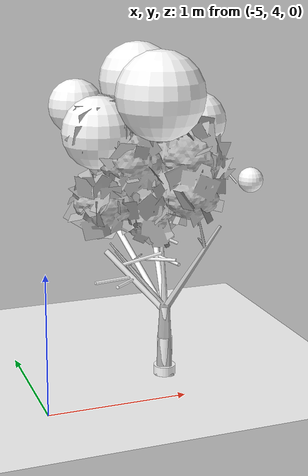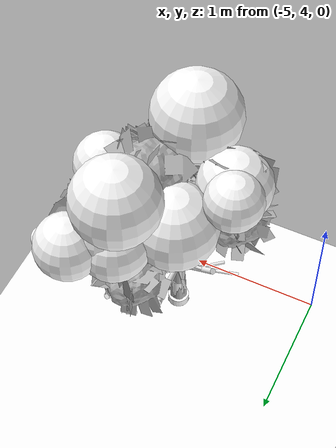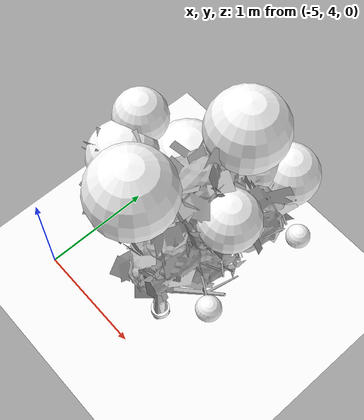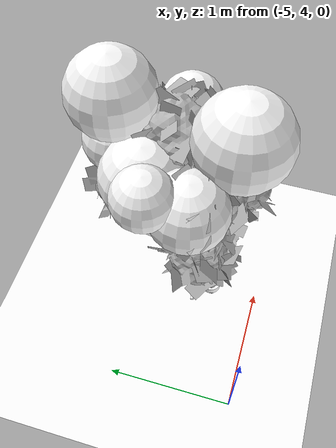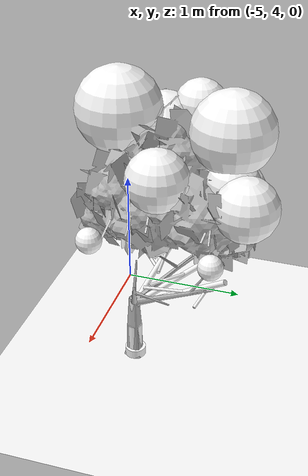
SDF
<sdf version="1.11">
 <world name="peach_orchard">
  <model name="ground">
   <static>true</static>
   <link name="link">
    <visual name="soil">
     <geometry><plane><normal>0 0 1</normal><size>32 22</size></plane></geometry>
     <material>
      <ambient>1 1 1 1</ambient>
      <diffuse>1 1 1 1</diffuse>
      <specular>0.1 0.1 0.1 1</specular>
      <pbr>
       <metal>
        <albedo_map>textures/soil_albedo.png</albedo_map>
        <normal_map type="tangent">textures/soil_normal.png</normal_map>
        <roughness>0.95</roughness>
        <metalness>0</metalness>
       </metal>
      </pbr>
     </material>
    </visual>
    <collision name="c_soil">
     <geometry><plane><normal>0 0 1</normal><size>32 22</size></plane></geometry>
    </collision>
   </link>
  </model>
  <model name="tree_r1_t5">
   <pose>-4 4.4 0 0 0 0</pose>
   <static>true</static>
   <link name="link">
    <visual name="tree_mesh">
     <pose>0 0 0 0 0 -0.325923</pose>
     <geometry>
      <mesh><uri>model://peach_sim/meshes/peach_tree_b.glb</uri><scale>0.947144 0.947144 0.947144</scale></mesh>
     </geometry>
    </visual>
    <visual name="trunk_0">
     <pose>0 0 0.145671 0 0 0</pose>
     <geometry><cylinder><radius>0.055955</radius><length>0.291343</length></cylinder></geometry>
     <material>
      <ambient>1 1 1 1</ambient>
      <diffuse>1 1 1 1</diffuse>
      <specular>0.1 0.1 0.1 1</specular>
      <pbr>
       <metal>
        <albedo_map>textures/bark_albedo.png</albedo_map>
        <normal_map type="tangent">textures/bark_normal.png</normal_map>
        <roughness>0.9</roughness>
        <metalness>0</metalness>
       </metal>
      </pbr>
     </material>
    </visual>
    <collision name="c_trunk_0">
     <pose>0 0 0.145671 0 0 0</pose>
     <geometry><cylinder><radius>0.055955</radius><length>0.291343</length></cylinder></geometry>
    </collision>
    <visual name="trunk_1">
     <pose>0 0 0.410528 0 0 0</pose>
     <geometry><cylinder><radius>0.0402876</radius><length>0.238371</length></cylinder></geometry>
     <material>
      <ambient>1 1 1 1</ambient>
      <diffuse>1 1 1 1</diffuse>
      <specular>0.1 0.1 0.1 1</specular>
      <pbr>
       <metal>
        <albedo_map>textures/bark_albedo.png</albedo_map>
        <normal_map type="tangent">textures/bark_normal.png</normal_map>
        <roughness>0.9</roughness>
        <metalness>0</metalness>
       </metal>
      </pbr>
     </material>
    </visual>
    <collision name="c_trunk_1">
     <pose>0 0 0.410528 0 0 0</pose>
     <geometry><cylinder><radius>0.0402876</radius><length>0.238371</length></cylinder></geometry>
    </collision>
    <visual name="root_flare">
     <pose>0 0 0.035 0 0 0</pose>
     <geometry><cylinder><radius>0.0811347</radius><length>0.07</length></cylinder></geometry>
     <material>
      <ambient>1 1 1 1</ambient>
      <diffuse>1 1 1 1</diffuse>
      <specular>0.1 0.1 0.1 1</specular>
      <pbr>
       <metal>
        <albedo_map>textures/bark_albedo.png</albedo_map>
        <normal_map type="tangent">textures/bark_normal.png</normal_map>
        <roughness>0.95</roughness>
        <metalness>0</metalness>
       </metal>
      </pbr>
     </material>
    </visual>
    <visual name="scaffold_0">
     <pose>-0.0872035 0.344251 0.759232 0 0.917364 1.81889</pose>
     <geometry><cylinder><radius>0.022</radius><length>0.894518</length></cylinder></geometry>
     <material>
      <ambient>1 1 1 1</ambient>
      <diffuse>1 1 1 1</diffuse>
      <specular>0.1 0.1 0.1 1</specular>
      <pbr>
       <metal>
        <albedo_map>textures/bark_albedo.png</albedo_map>
        <normal_map type="tangent">textures/bark_normal.png</normal_map>
        <roughness>0.9</roughness>
        <metalness>0</metalness>
       </metal>
      </pbr>
     </material>
    </visual>
    <collision name="c_scaffold_0">
     <pose>-0.0872035 0.344251 0.759232 0 0.917364 1.81889</pose>
     <geometry><cylinder><radius>0.022</radius><length>0.894518</length></cylinder></geometry>
    </collision>
    <visual name="branchlet_0_0">
     <pose>-0.117615 0.626333 1.03155 0 0.589614 1.14702</pose>
     <geometry><cylinder><radius>0.012</radius><length>0.229909</length></cylinder></geometry>
     <material>
      <ambient>1 1 1 1</ambient>
      <diffuse>1 1 1 1</diffuse>
      <specular>0.1 0.1 0.1 1</specular>
      <pbr>
       <metal>
        <albedo_map>textures/bark_albedo.png</albedo_map>
        <normal_map type="tangent">textures/bark_normal.png</normal_map>
        <roughness>0.9</roughness>
        <metalness>0</metalness>
       </metal>
      </pbr>
     </material>
    </visual>
    <visual name="branchlet_0_1">
     <pose>0.0294512 0.284055 0.802351 0 1.51422 -0.679646</pose>
     <geometry><cylinder><radius>0.012</radius><length>0.328391</length></cylinder></geometry>
     <material>
      <ambient>1 1 1 1</ambient>
      <diffuse>1 1 1 1</diffuse>
      <specular>0.1 0.1 0.1 1</specular>
      <pbr>
       <metal>
        <albedo_map>textures/bark_albedo.png</albedo_map>
        <normal_map type="tangent">textures/bark_normal.png</normal_map>
        <roughness>0.9</roughness>
        <metalness>0</metalness>
       </metal>
      </pbr>
     </material>
    </visual>
    <visual name="scaffold_1">
     <pose>0.0938184 0.382501 0.735508 0 1.00851 1.33027</pose>
     <geometry><cylinder><radius>0.022</radius><length>0.931016</length></cylinder></geometry>
     <material>
      <ambient>1 1 1 1</ambient>
      <diffuse>1 1 1 1</diffuse>
      <specular>0.1 0.1 0.1 1</specular>
      <pbr>
       <metal>
        <albedo_map>textures/bark_albedo.png</albedo_map>
        <normal_map type="tangent">textures/bark_normal.png</normal_map>
        <roughness>0.9</roughness>
        <metalness>0</metalness>
       </metal>
      </pbr>
     </material>
    </visual>
    <collision name="c_scaffold_1">
     <pose>0.0938184 0.382501 0.735508 0 1.00851 1.33027</pose>
     <geometry><cylinder><radius>0.022</radius><length>0.931016</length></cylinder></geometry>
    </collision>
    <visual name="branchlet_1_0">
     <pose>0.243876 0.606579 0.860283 0 1.98562 -0.343325</pose>
     <geometry><cylinder><radius>0.012</radius><length>0.202907</length></cylinder></geometry>
     <material>
      <ambient>1 1 1 1</ambient>
      <diffuse>1 1 1 1</diffuse>
      <specular>0.1 0.1 0.1 1</specular>
      <pbr>
       <metal>
        <albedo_map>textures/bark_albedo.png</albedo_map>
        <normal_map type="tangent">textures/bark_normal.png</normal_map>
        <roughness>0.9</roughness>
        <metalness>0</metalness>
       </metal>
      </pbr>
     </material>
    </visual>
    <visual name="branchlet_1_1">
     <pose>0.137007 0.291734 0.78293 0 1.53204 -1.39424</pose>
     <geometry><cylinder><radius>0.012</radius><length>0.314072</length></cylinder></geometry>
     <material>
      <ambient>1 1 1 1</ambient>
      <diffuse>1 1 1 1</diffuse>
      <specular>0.1 0.1 0.1 1</specular>
      <pbr>
       <metal>
        <albedo_map>textures/bark_albedo.png</albedo_map>
        <normal_map type="tangent">textures/bark_normal.png</normal_map>
        <roughness>0.9</roughness>
        <metalness>0</metalness>
       </metal>
      </pbr>
     </material>
    </visual>
    <visual name="scaffold_2">
     <pose>-0.18991 0.112189 0.706582 0 0.788415 2.608</pose>
     <geometry><cylinder><radius>0.022</radius><length>0.622</length></cylinder></geometry>
     <material>
      <ambient>1 1 1 1</ambient>
      <diffuse>1 1 1 1</diffuse>
      <specular>0.1 0.1 0.1 1</specular>
      <pbr>
       <metal>
        <albedo_map>textures/bark_albedo.png</albedo_map>
        <normal_map type="tangent">textures/bark_normal.png</normal_map>
        <roughness>0.9</roughness>
        <metalness>0</metalness>
       </metal>
      </pbr>
     </material>
    </visual>
    <collision name="c_scaffold_2">
     <pose>-0.18991 0.112189 0.706582 0 0.788415 2.608</pose>
     <geometry><cylinder><radius>0.022</radius><length>0.622</length></cylinder></geometry>
    </collision>
    <visual name="branchlet_2_0">
     <pose>-0.366314 0.0913442 0.741849 0 1.54168 -2.90192</pose>
     <geometry><cylinder><radius>0.012</radius><length>0.308435</length></cylinder></geometry>
     <material>
      <ambient>1 1 1 1</ambient>
      <diffuse>1 1 1 1</diffuse>
      <specular>0.1 0.1 0.1 1</specular>
      <pbr>
       <metal>
        <albedo_map>textures/bark_albedo.png</albedo_map>
        <normal_map type="tangent">textures/bark_normal.png</normal_map>
        <roughness>0.9</roughness>
        <metalness>0</metalness>
       </metal>
      </pbr>
     </material>
    </visual>
    <visual name="branchlet_2_1">
     <pose>-0.287262 0.0525354 0.721178 0 1.57132 -2.47102</pose>
     <geometry><cylinder><radius>0.012</radius><length>0.216117</length></cylinder></geometry>
     <material>
      <ambient>1 1 1 1</ambient>
      <diffuse>1 1 1 1</diffuse>
      <specular>0.1 0.1 0.1 1</specular>
      <pbr>
       <metal>
        <albedo_map>textures/bark_albedo.png</albedo_map>
        <normal_map type="tangent">textures/bark_normal.png</normal_map>
        <roughness>0.9</roughness>
        <metalness>0</metalness>
       </metal>
      </pbr>
     </material>
    </visual>
    <visual name="branchlet_2_2">
     <pose>-0.118021 0.193758 0.843201 0 1.43873 0.136178</pose>
     <geometry><cylinder><radius>0.012</radius><length>0.347076</length></cylinder></geometry>
     <material>
      <ambient>1 1 1 1</ambient>
      <diffuse>1 1 1 1</diffuse>
      <specular>0.1 0.1 0.1 1</specular>
      <pbr>
       <metal>
        <albedo_map>textures/bark_albedo.png</albedo_map>
        <normal_map type="tangent">textures/bark_normal.png</normal_map>
        <roughness>0.9</roughness>
        <metalness>0</metalness>
       </metal>
      </pbr>
     </material>
    </visual>
    <visual name="canopy_0">
     <pose>-0.209099 0.484087 1.69039 0 0 0</pose>
     <geometry><sphere><radius>0.298258</radius></sphere></geometry>
     <material>
      <ambient>1 1 1 1</ambient>
      <diffuse>1 1 1 1</diffuse>
      <specular>0.1 0.1 0.1 1</specular>
      <pbr>
       <metal>
        <albedo_map>textures/leaf_albedo.png</albedo_map>
        <normal_map type="tangent">textures/leaf_normal.png</normal_map>
        <roughness>0.85</roughness>
        <metalness>0</metalness>
       </metal>
      </pbr>
     </material>
    </visual>
    <collision name="c_canopy_0">
     <pose>-0.209099 0.484087 1.69039 0 0 0</pose>
     <geometry><sphere><radius>0.298258</radius></sphere></geometry>
    </collision>
    <visual name="canopy_1">
     <pose>0.332793 0.925701 1.70175 0 0 0</pose>
     <geometry><sphere><radius>0.226411</radius></sphere></geometry>
     <material>
      <ambient>1 1 1 1</ambient>
      <diffuse>1 1 1 1</diffuse>
      <specular>0.1 0.1 0.1 1</specular>
      <pbr>
       <metal>
        <albedo_map>textures/leaf_albedo.png</albedo_map>
        <normal_map type="tangent">textures/leaf_normal.png</normal_map>
        <roughness>0.85</roughness>
        <metalness>0</metalness>
       </metal>
      </pbr>
     </material>
    </visual>
    <collision name="c_canopy_1">
     <pose>0.332793 0.925701 1.70175 0 0 0</pose>
     <geometry><sphere><radius>0.226411</radius></sphere></geometry>
    </collision>
    <visual name="canopy_2">
     <pose>-0.0871858 -0.107605 2.09613 0 0 0</pose>
     <geometry><sphere><radius>0.316144</radius></sphere></geometry>
     <material>
      <ambient>1 1 1 1</ambient>
      <diffuse>1 1 1 1</diffuse>
      <specular>0.1 0.1 0.1 1</specular>
      <pbr>
       <metal>
        <albedo_map>textures/leaf_albedo.png</albedo_map>
        <normal_map type="tangent">textures/leaf_normal.png</normal_map>
        <roughness>0.85</roughness>
        <metalness>0</metalness>
       </metal>
      </pbr>
     </material>
    </visual>
    <collision name="c_canopy_2">
     <pose>-0.0871858 -0.107605 2.09613 0 0 0</pose>
     <geometry><sphere><radius>0.316144</radius></sphere></geometry>
    </collision>
    <visual name="canopy_3">
     <pose>0.0888213 0.767554 1.66006 0 0 0</pose>
     <geometry><sphere><radius>0.244569</radius></sphere></geometry>
     <material>
      <ambient>1 1 1 1</ambient>
      <diffuse>1 1 1 1</diffuse>
      <specular>0.1 0.1 0.1 1</specular>
      <pbr>
       <metal>
        <albedo_map>textures/leaf_albedo.png</albedo_map>
        <normal_map type="tangent">textures/leaf_normal.png</normal_map>
        <roughness>0.85</roughness>
        <metalness>0</metalness>
       </metal>
      </pbr>
     </material>
    </visual>
    <visual name="canopy_4">
     <pose>0.167476 0.789726 1.77135 0 0 0</pose>
     <geometry><sphere><radius>0.191472</radius></sphere></geometry>
     <material>
      <ambient>1 1 1 1</ambient>
      <diffuse>1 1 1 1</diffuse>
      <specular>0.1 0.1 0.1 1</specular>
      <pbr>
       <metal>
        <albedo_map>textures/leaf_albedo.png</albedo_map>
        <normal_map type="tangent">textures/leaf_normal.png</normal_map>
        <roughness>0.85</roughness>
        <metalness>0</metalness>
       </metal>
      </pbr>
     </material>
    </visual>
    <visual name="canopy_5">
     <pose>-0.464995 0.11666 1.8268 0 0 0</pose>
     <geometry><sphere><radius>0.26046</radius></sphere></geometry>
     <material>
      <ambient>1 1 1 1</ambient>
      <diffuse>1 1 1 1</diffuse>
      <specular>0.1 0.1 0.1 1</specular>
      <pbr>
       <metal>
        <albedo_map>textures/leaf_albedo.png</albedo_map>
        <normal_map type="tangent">textures/leaf_normal.png</normal_map>
        <roughness>0.85</roughness>
        <metalness>0</metalness>
       </metal>
      </pbr>
     </material>
    </visual>
    <visual name="canopy_6">
     <pose>0.0565173 0.752138 2.10618 0 0 0</pose>
     <geometry><sphere><radius>0.298034</radius></sphere></geometry>
     <material>
      <ambient>1 1 1 1</ambient>
      <diffuse>1 1 1 1</diffuse>
      <specular>0.1 0.1 0.1 1</specular>
      <pbr>
       <metal>
        <albedo_map>textures/leaf_albedo.png</albedo_map>
        <normal_map type="tangent">textures/leaf_normal.png</normal_map>
        <roughness>0.85</roughness>
        <metalness>0</metalness>
       </metal>
      </pbr>
     </material>
    </visual>
    <visual name="canopy_7">
     <pose>0.365699 0.319125 1.83606 0 0 0</pose>
     <geometry><sphere><radius>0.222498</radius></sphere></geometry>
     <material>
      <ambient>1 1 1 1</ambient>
      <diffuse>1 1 1 1</diffuse>
      <specular>0.1 0.1 0.1 1</specular>
      <pbr>
       <metal>
        <albedo_map>textures/leaf_albedo.png</albedo_map>
        <normal_map type="tangent">textures/leaf_normal.png</normal_map>
        <roughness>0.85</roughness>
        <metalness>0</metalness>
       </metal>
      </pbr>
     </material>
    </visual>
    <visual name="canopy_8">
     <pose>-0.555416 0.356965 1.98275 0 0 0</pose>
     <geometry><sphere><radius>0.198073</radius></sphere></geometry>
     <material>
      <ambient>1 1 1 1</ambient>
      <diffuse>1 1 1 1</diffuse>
      <specular>0.1 0.1 0.1 1</specular>
      <pbr>
       <metal>
        <albedo_map>textures/leaf_albedo.png</albedo_map>
        <normal_map type="tangent">textures/leaf_normal.png</normal_map>
        <roughness>0.85</roughness>
        <metalness>0</metalness>
       </metal>
      </pbr>
     </material>
    </visual>
    <visual name="foliage_0">
     <pose>0.62716 -0.0815029 1.44969 0 0 0</pose>
     <geometry><sphere><radius>0.0913179</radius></sphere></geometry>
     <material>
      <ambient>1 1 1 1</ambient>
      <diffuse>1 1 1 1</diffuse>
      <specular>0.1 0.1 0.1 1</specular>
      <pbr>
       <metal>
        <albedo_map>textures/leaf_albedo.png</albedo_map>
        <normal_map type="tangent">textures/leaf_normal.png</normal_map>
        <roughness>0.85</roughness>
        <metalness>0</metalness>
       </metal>
      </pbr>
     </material>
    </visual>
    <visual name="foliage_4">
     <pose>0.635671 0.768335 1.40983 0 0 0</pose>
     <geometry><sphere><radius>0.0873653</radius></sphere></geometry>
     <material>
      <ambient>1 1 1 1</ambient>
      <diffuse>1 1 1 1</diffuse>
      <specular>0.1 0.1 0.1 1</specular>
      <pbr>
       <metal>
        <albedo_map>textures/leaf_albedo.png</albedo_map>
        <normal_map type="tangent">textures/leaf_normal.png</normal_map>
        <roughness>0.85</roughness>
        <metalness>0</metalness>
       </metal>
      </pbr>
     </material>
    </visual>
    <visual name="foliage_8">
     <pose>0.137857 0.225351 1.22008 0 0 0</pose>
     <geometry><sphere><radius>0.128036</radius></sphere></geometry>
     <material>
      <ambient>1 1 1 1</ambient>
      <diffuse>1 1 1 1</diffuse>
      <specular>0.1 0.1 0.1 1</specular>
      <pbr>
       <metal>
        <albedo_map>textures/leaf_albedo.png</albedo_map>
        <normal_map type="tangent">textures/leaf_normal.png</normal_map>
        <roughness>0.85</roughness>
        <metalness>0</metalness>
       </metal>
      </pbr>
     </material>
    </visual>
    <visual name="twig_0">
     <pose>0.500011 -0.0039304 1.47663 0 0.72287 2.74191</pose>
     <geometry><cylinder><radius>0.007</radius><length>0.146462</length></cylinder></geometry>
     <material>
      <ambient>1 1 1 1</ambient>
      <diffuse>1 1 1 1</diffuse>
      <specular>0.1 0.1 0.1 1</specular>
      <pbr>
       <metal>
        <albedo_map>textures/bark_albedo.png</albedo_map>
        <normal_map type="tangent">textures/bark_normal.png</normal_map>
        <roughness>0.9</roughness>
        <metalness>0</metalness>
       </metal>
      </pbr>
     </material>
    </visual>
    <visual name="twig_1">
     <pose>0.502322 0.155601 1.52562 0 0.406362 2.74587</pose>
     <geometry><cylinder><radius>0.007</radius><length>0.133076</length></cylinder></geometry>
     <material>
      <ambient>1 1 1 1</ambient>
      <diffuse>1 1 1 1</diffuse>
      <specular>0.1 0.1 0.1 1</specular>
      <pbr>
       <metal>
        <albedo_map>textures/bark_albedo.png</albedo_map>
        <normal_map type="tangent">textures/bark_normal.png</normal_map>
        <roughness>0.9</roughness>
        <metalness>0</metalness>
       </metal>
      </pbr>
     </material>
    </visual>
    <visual name="twig_2">
     <pose>0.485269 0.287759 1.57383 0 0.715409 -3.09228</pose>
     <geometry><cylinder><radius>0.007</radius><length>0.141939</length></cylinder></geometry>
     <material>
      <ambient>1 1 1 1</ambient>
      <diffuse>1 1 1 1</diffuse>
      <specular>0.1 0.1 0.1 1</specular>
      <pbr>
       <metal>
        <albedo_map>textures/bark_albedo.png</albedo_map>
        <normal_map type="tangent">textures/bark_normal.png</normal_map>
        <roughness>0.9</roughness>
        <metalness>0</metalness>
       </metal>
      </pbr>
     </material>
    </visual>
    <visual name="twig_3">
     <pose>0.475803 0.471413 1.5608 0 0.546086 2.64745</pose>
     <geometry><cylinder><radius>0.007</radius><length>0.12177</length></cylinder></geometry>
     <material>
      <ambient>1 1 1 1</ambient>
      <diffuse>1 1 1 1</diffuse>
      <specular>0.1 0.1 0.1 1</specular>
      <pbr>
       <metal>
        <albedo_map>textures/bark_albedo.png</albedo_map>
        <normal_map type="tangent">textures/bark_normal.png</normal_map>
        <roughness>0.9</roughness>
        <metalness>0</metalness>
       </metal>
      </pbr>
     </material>
    </visual>
    <visual name="twig_4">
     <pose>0.516239 0.725572 1.55619 0 0.503331 -3.07604</pose>
     <geometry><cylinder><radius>0.007</radius><length>0.107752</length></cylinder></geometry>
     <material>
      <ambient>1 1 1 1</ambient>
      <diffuse>1 1 1 1</diffuse>
      <specular>0.1 0.1 0.1 1</specular>
      <pbr>
       <metal>
        <albedo_map>textures/bark_albedo.png</albedo_map>
        <normal_map type="tangent">textures/bark_normal.png</normal_map>
        <roughness>0.9</roughness>
        <metalness>0</metalness>
       </metal>
      </pbr>
     </material>
    </visual>
    <visual name="twig_5">
     <pose>0.511109 0.690157 1.57111 0 0.702458 2.76974</pose>
     <geometry><cylinder><radius>0.007</radius><length>0.119186</length></cylinder></geometry>
     <material>
      <ambient>1 1 1 1</ambient>
      <diffuse>1 1 1 1</diffuse>
      <specular>0.1 0.1 0.1 1</specular>
      <pbr>
       <metal>
        <albedo_map>textures/bark_albedo.png</albedo_map>
        <normal_map type="tangent">textures/bark_normal.png</normal_map>
        <roughness>0.9</roughness>
        <metalness>0</metalness>
       </metal>
      </pbr>
     </material>
    </visual>
    <visual name="twig_6">
     <pose>0.240193 0.0777874 1.4124 0 0.226697 2.42687</pose>
     <geometry><cylinder><radius>0.007</radius><length>0.112112</length></cylinder></geometry>
     <material>
      <ambient>1 1 1 1</ambient>
      <diffuse>1 1 1 1</diffuse>
      <specular>0.1 0.1 0.1 1</specular>
      <pbr>
       <metal>
        <albedo_map>textures/bark_albedo.png</albedo_map>
        <normal_map type="tangent">textures/bark_normal.png</normal_map>
        <roughness>0.9</roughness>
        <metalness>0</metalness>
       </metal>
      </pbr>
     </material>
    </visual>
    <visual name="twig_7">
     <pose>0.177833 0.154547 1.41245 0 0.307385 -2.72691</pose>
     <geometry><cylinder><radius>0.007</radius><length>0.166451</length></cylinder></geometry>
     <material>
      <ambient>1 1 1 1</ambient>
      <diffuse>1 1 1 1</diffuse>
      <specular>0.1 0.1 0.1 1</specular>
      <pbr>
       <metal>
        <albedo_map>textures/bark_albedo.png</albedo_map>
        <normal_map type="tangent">textures/bark_normal.png</normal_map>
        <roughness>0.9</roughness>
        <metalness>0</metalness>
       </metal>
      </pbr>
     </material>
    </visual>
    <visual name="twig_8">
     <pose>0.171502 0.167783 1.4057 0 0.537969 -2.60803</pose>
     <geometry><cylinder><radius>0.007</radius><length>0.172018</length></cylinder></geometry>
     <material>
      <ambient>1 1 1 1</ambient>
      <diffuse>1 1 1 1</diffuse>
      <specular>0.1 0.1 0.1 1</specular>
      <pbr>
       <metal>
        <albedo_map>textures/bark_albedo.png</albedo_map>
        <normal_map type="tangent">textures/bark_normal.png</normal_map>
        <roughness>0.9</roughness>
        <metalness>0</metalness>
       </metal>
      </pbr>
     </material>
    </visual>
    <visual name="twig_9">
     <pose>0.16314 0.236704 1.41513 0 0.69298 -3.04943</pose>
     <geometry><cylinder><radius>0.007</radius><length>0.178405</length></cylinder></geometry>
     <material>
      <ambient>1 1 1 1</ambient>
      <diffuse>1 1 1 1</diffuse>
      <specular>0.1 0.1 0.1 1</specular>
      <pbr>
       <metal>
        <albedo_map>textures/bark_albedo.png</albedo_map>
        <normal_map type="tangent">textures/bark_normal.png</normal_map>
        <roughness>0.9</roughness>
        <metalness>0</metalness>
       </metal>
      </pbr>
     </material>
    </visual>
    <visual name="twig_10">
     <pose>0.172356 0.323561 1.42137 0 0.562439 -2.77195</pose>
     <geometry><cylinder><radius>0.007</radius><length>0.191274</length></cylinder></geometry>
     <material>
      <ambient>1 1 1 1</ambient>
      <diffuse>1 1 1 1</diffuse>
      <specular>0.1 0.1 0.1 1</specular>
      <pbr>
       <metal>
        <albedo_map>textures/bark_albedo.png</albedo_map>
        <normal_map type="tangent">textures/bark_normal.png</normal_map>
        <roughness>0.9</roughness>
        <metalness>0</metalness>
       </metal>
      </pbr>
     </material>
    </visual>
   </link>
  </model>
 </world>
</sdf>
